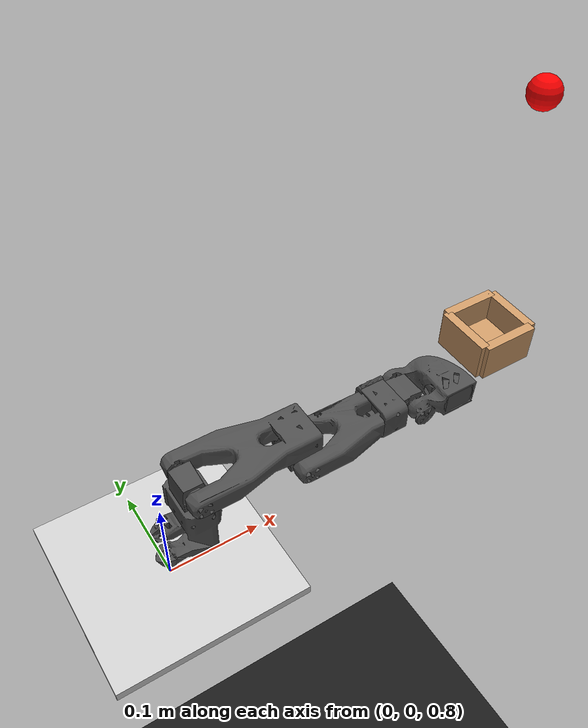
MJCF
<mujoco model="xlerobot_one_arm_on_plane">
  <compiler angle="radian" meshdir="./assets/"/>
  <option timestep="0.002" gravity="0 0 -9.80665" integrator="implicitfast"/>
  <visual>
    <headlight diffuse="0.6 0.6 0.6" ambient="0.3 0.3 0.3" specular="0 0 0"/>
    <rgba haze="0.15 0.25 0.35 1"/>
    <global azimuth="120" elevation="-20"/>
  </visual>

  <asset>
    <texture type="skybox" builtin="gradient" rgb1="0.3 0.5 0.7" rgb2="0 0 0" width="512" height="3072"/>
    <texture type="2d" name="groundplane" builtin="flat" mark="edge"
             rgb1="0.1 0.1 0.1" rgb2="0.3 0.5 0.3" markrgb="0.8 0.8 0.8" width="300" height="300"/>
    <material name="groundplane" texture="groundplane" texuniform="true" texrepeat="5 5" reflectance="0.2"/>
    <material name="orange" rgba="1.0 0.331 0.0 1.0" specular="0.1" shininess="0.1"/>
    <material name="black"  rgba="0.1 0.1 0.1 1.0" specular="0.1" shininess="0.1"/>

    <mesh name="Rotation_Pitch"         file="Rotation_Pitch.stl"/>
    <mesh name="Rotation_Pitch_Motor"   file="Rotation_Pitch_Motor.stl"/>
    <mesh name="Upper_Arm"              file="Upper_Arm.stl"/>
    <mesh name="Upper_Arm_Motor"        file="Upper_Arm_Motor.stl"/>
    <mesh name="Lower_Arm"              file="Lower_Arm.stl"/>
    <mesh name="Lower_Arm_Motor"        file="Lower_Arm_Motor.stl"/>
    <mesh name="Wrist_Pitch_Roll"       file="Wrist_Pitch_Roll.stl"/>
    <mesh name="Wrist_Pitch_Roll_Motor" file="Wrist_Pitch_Roll_Motor.stl"/>
  </asset>

  <default>
    <default class="so_arm100">
      <joint frictionloss="0.1" armature="0.1"/>
      <position kp="50" dampratio="1" forcerange="-35 35" ctrlrange="-3.14158 3.14158"/>
      <default class="Rotation"><joint axis="0 1 0" range="-2.2 2.2"/></default>
      <default class="Pitch">   <joint axis="1 0 0" range="-3.14158 0.2"/></default>
      <default class="Elbow">   <joint axis="1 0 0" range="0 3.14158"/></default>
      <default class="Wrist_Pitch"><joint axis="1 0 0" range="-2.0 1.8"/></default>
      <default class="Wrist_Roll"> <joint axis="0 1 0" range="-3.14158 3.14158"/></default>
      <default class="visual">
        <geom type="mesh" contype="0" conaffinity="0" density="0" group="2" material="black"/>
        <default class="motor_visual"><geom material="black"/></default>
      </default>
      <default class="collision">
        <geom group="3" type="mesh"/>
      </default>
    </default>
  </default>

  <worldbody>
    <light pos="0 0 3" dir="0 0 -1" directional="true"/>
    <geom type="plane" size="5 5 0.05" material="groundplane"/>

    <!-- small visual platform -->
     <body name="ball" pos="0.38 -0.0 1.2">
                  <joint name="ball_free" type="free"/>
                  <inertial mass="0.05" pos="0 0 0" diaginertia="4.5e-06 4.5e-06 4.5e-06"/>
                  <geom type="sphere" size="0.015" density="1000" rgba="1 0 0 1"/>
                </body>

    <body name="platform" pos="0 0 0.82">
      <geom name="platform_top" type="box" size="0.10 0.10 0.005"
            pos="0 0 0" rgba="0.8 0.8 0.8 1"/>
    </body>

    <!-- arm base fixed to platform -->
    <body name="robot_base" pos="0 0 0.82">

      <body name="Rotation_Pitch_R" pos="0 0 0" quat="0.499998 0.5 0.500002 0.5">
        <inertial pos="-9.07886e-05 0.0590972 0.031089"
                  quat="0.363978 0.441169 -0.623108 0.533504"
                  mass="0.119226"
                  diaginertia="5.94278e-05 5.89975e-05 3.13712e-05"/>
        <joint name="Rotation_R" pos="0 0 0" axis="0 -1 0" range="-2.1 2.1"/>
        <geom type="mesh" mesh="Rotation_Pitch"       rgba="0.3 0.3 0.3 1"/>
        <geom type="mesh" mesh="Rotation_Pitch_Motor" rgba="0.3 0.3 0.3 1"/>

        <body name="Upper_Arm_2" pos="0 0.1025 0.0306" quat="0.707105 0.707108 0 0">
          <inertial pos="-1.72052e-05 0.0701802 0.00310545"
                    quat="0.50104 0.498994 -0.493562 0.50632"
                    mass="0.162409"
                    diaginertia="0.000213312 0.000167164 7.01522e-05"/>
          <joint name="Pitch_R" pos="0 0 0" axis="-1 0 0" range="-0.1 3.45"/>
          <geom type="mesh" mesh="Upper_Arm"       rgba="0.3 0.3 0.3 1"/>
          <geom type="mesh" mesh="Upper_Arm_Motor" rgba="0.3 0.3 0.3 1"/>

          <body name="Lower_Arm_2" pos="0 0.11257 0.028" quat="0.707105 -0.707108 0 0">
            <inertial pos="-0.00339604 0.00137796 0.0768007"
                      quat="0.701995 0.0787996 0.0645626 0.704859"
                      mass="0.147968"
                      diaginertia="0.000138803 0.000107748 4.84242e-05"/>
            <joint name="Elbow_R" pos="0 0 0" axis="1 0 0" range="-0.2 3.14159"/>
            <geom type="mesh" mesh="Lower_Arm"       rgba="0.3 0.3 0.3 1"/>
            <geom type="mesh" mesh="Lower_Arm_Motor" rgba="0.3 0.3 0.3 1"/>

            <body name="Wrist_Pitch_Roll_2" pos="0 0.0052 0.1349" quat="0.707105 -0.707108 0 0">
              <inertial pos="-0.00852653 -0.0352279 -2.34622e-05"
                        quat="-0.0522806 0.705235 0.0549524 0.704905"
                        mass="0.0661321"
                        diaginertia="3.45403e-05 2.39041e-05 1.94704e-05"/>
              <joint name="Wrist_Pitch_R" pos="0 0 0" axis="1 0 0" range="-1.8 1.8"/>
              <joint name="Wrist_Roll_R"  pos="0 0 0" axis="0 1 0" range="-3.14159 3.14159"/>
              <geom type="mesh" mesh="Wrist_Pitch_Roll"       rgba="0.3 0.3 0.3 1"/>
              <geom type="mesh" mesh="Wrist_Pitch_Roll_Motor" rgba="0.3 0.3 0.3 1"/>

              <!-- small concave box to hold balls -->
              <body name="ball_container" pos="0 -0.1 0.02">
                <geom name="container_base" type="box" size="0.03 0.03 0.005"
                      pos="0 0 0" rgba="0.8 0.6 0.4 1"/>
                <geom name="wall_front" type="box" size="0.03 0.005 0.02"
                      pos="0  0.03 0.015" rgba="0.8 0.6 0.4 1"/>
                <geom name="wall_back"  type="box" size="0.03 0.005 0.02"
                      pos="0 -0.03 0.015" rgba="0.8 0.6 0.4 1"/>
                <geom name="wall_left"  type="box" size="0.005 0.03 0.02"
                      pos="-0.03 0 0.015" rgba="0.8 0.6 0.4 1"/>
                <geom name="wall_right" type="box" size="0.005 0.03 0.02"
                      pos="0.03  0 0.015" rgba="0.8 0.6 0.4 1"/>

                <!-- a small ball, starting slightly above container so it will fall in -->

              </body>

            </body>
          </body>
        </body>
      </body>
    </body>
  </worldbody>

  <actuator>
    <position class="Rotation"    name="Rotation_R"    joint="Rotation_R"/>
    <position class="Pitch"       name="Pitch_R"       joint="Pitch_R"/>
    <position class="Elbow"       name="Elbow_R"       joint="Elbow_R"/>
    <position class="Wrist_Pitch" name="Wrist_Pitch_R" joint="Wrist_Pitch_R"/>
    <position class="Wrist_Roll"  name="Wrist_Roll_R"  joint="Wrist_Roll_R"/>
  </actuator>

  <keyframe>
    <!-- 投掷起始姿态: 7个DOF = ball(7) + arm_joints(5) -->
    <!-- ball: x y z qw qx qy qz, arm: Rotation_R Pitch_R Elbow_R Wrist_Pitch_R Wrist_Roll_R -->
    <key name="throwing_ready"
         qpos="0.38 0.0 1.2 1.0 0.0 0.0 0.0 0.0 -0.5 1.5 0.0 0.0"
         ctrl="0.0 -0.5 1.5 0.0 0.0"/>
    <key name="home"
         qpos="0.38 0.0 1.2 1.0 0.0 0.0 0.0 0.0 0.0 0.0 0.0 0.0"
         ctrl="0.0 0.0 0.0 0.0 0.0"/>
  </keyframe>
</mujoco>
